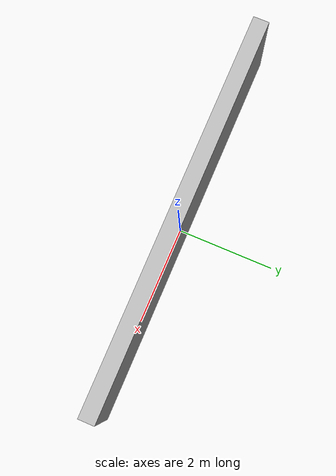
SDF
<?xml version="1.0" ?>
<sdf version="1.5">
  <model name="digital_wall">
    <static>true</static>
    <link name="link">
      <pose>0 0 1 0 0 0</pose>
      <collision name="collision">
        <geometry>
          <box>
            <size>8 0.32 2</size>
          </box>
        </geometry>
      </collision>
      <visual name="visual">
        <geometry>
          <box>
            <size>8 0.32 2</size>
          </box>
        </geometry>
        <material>
          <script>
            <uri>model://digital_wall/materials/scripts</uri>
            <uri>model://digital_wall/materials/textures</uri>
            <name>vrc/digital_wall</name>
          </script>
        </material>
      </visual>
    </link>
  </model>
</sdf>
